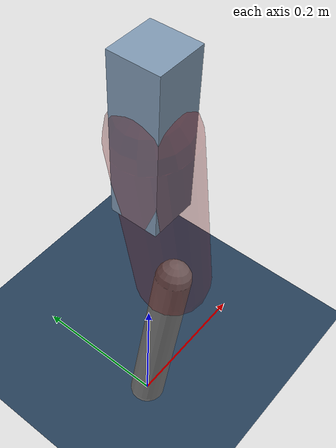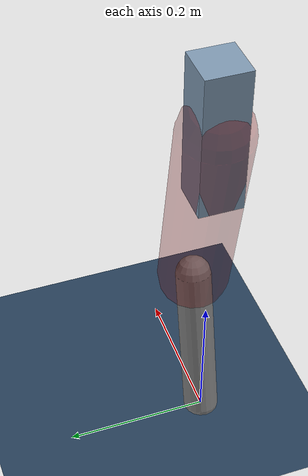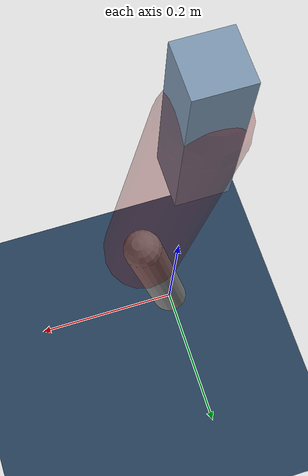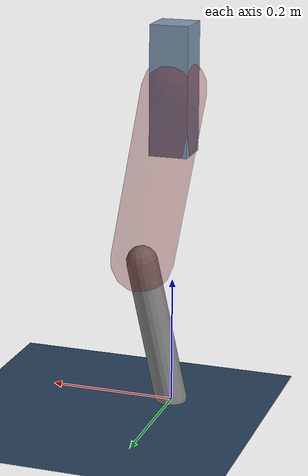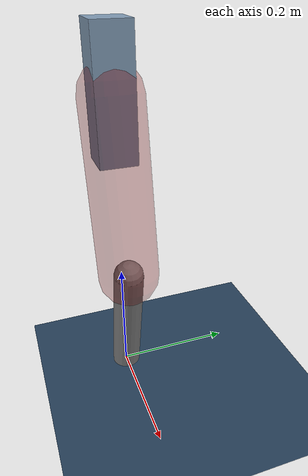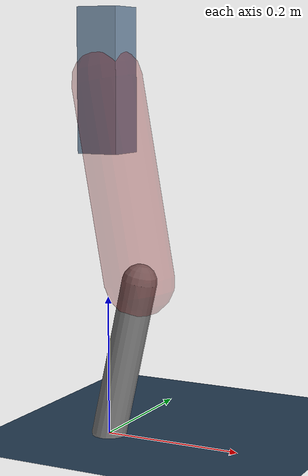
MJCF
<mujoco model="Hopper2D">
	<compiler inertiafromgeom="true" angle="radian" />
	<option timestep="0.001" integrator="implicit" cone="elliptic" solver="Newton" tolerance="1e-10" />

	<default>
		<geom contype="1" conaffinity="1" condim="3" friction="2 0.005 0.0001" solref="0.005 1" />
		<joint limited="true" damping="0.1" />
	</default>

	<asset>
		<texture name="skybox" type="skybox" builtin="gradient" rgb1=".4 .6 .8" rgb2="0 0 0" width="800" height="800" />
		<texture name="grid" type="2d" builtin="checker" rgb1=".1 .2 .3" rgb2=".2 .3 .4" width="300" height="300" mark="edge" markrgb=".2 .3 .4" />
		<material name="ground" texture="grid" texrepeat="1 1" texuniform="true" reflectance="0.1" />
		<material name="leg" rgba="0.5 0.6 0.7 1" />
	</asset>

	<worldbody>

		<geom name="floor" type="plane" size="5 5 0.25" material="ground" />

		<light directional="false" diffuse="0.8 0.8 0.8" specular="0.3 0.3 0.3" pos="0 0 2" dir="0 0 -1" />
		<light mode="targetbodycom" target="base" directional="false" diffuse="0.8 0.8 0.8" specular="0.3 0.3 0.3" pos="0 0 2" dir="0 0 -1" />

		<camera name="fixed" pos="0 -2 1" xyaxes="1 0 0 0 0 1" />
		<camera name="tracking" mode="trackcom" pos="0 -3 1" />

		<body name="root" pos="0 0 0.5042292831034842">
			<joint name="slide_x" type="slide" axis="1 0 0" range="-100 100" />
			<joint name="slide_z" type="slide" axis="0 0 1" range="0 10" />

			<body name="base" pos="0 0 0">
				<geom name="torso" type="box" size="0.03 0.03 0.1" mass="2.729" material="leg" />

				<body name="link1" pos="0 0 0" euler="0 1.3924146699942113 0">
					<joint type="hinge" axis="0 -1 0" pos="0 0 0" name="hinge1" limited="true" range="-3.14 3.14" stiffness="0" damping="0.1" />
					<geom name="thigh" type="capsule" fromto="0 0 0 0.282888782832482 0 0" size="0.05" rgba="0.5 0 0 0.3" mass="0.9427997136477014" />

					<body name="link2" pos="0.282888782832482 0 0" euler="0 0.39709566637492644 0">
						<joint type="hinge" axis="0 -1 0" pos="0 0 0" name="hinge2" limited="true" range="-3.14 3.14" stiffness="0" damping="0.1" />
						<geom name="shank" type="capsule" fromto="0 0 0 0.23134050027100228 0 0" size="0.025" mass="0.4270724002168018" />

					</body>
				</body>
			</body>
		</body>
	</worldbody>

	<actuator>
		<motor name="torque1" joint="hinge1" ctrlrange="-108.81379501998516 108.81379501998516" ctrllimited="true" gear="1" />
		<motor name="torque2" joint="hinge2" ctrlrange="-96.38056555629184 96.38056555629184" ctrllimited="true" gear="1" />
	</actuator>
</mujoco>
